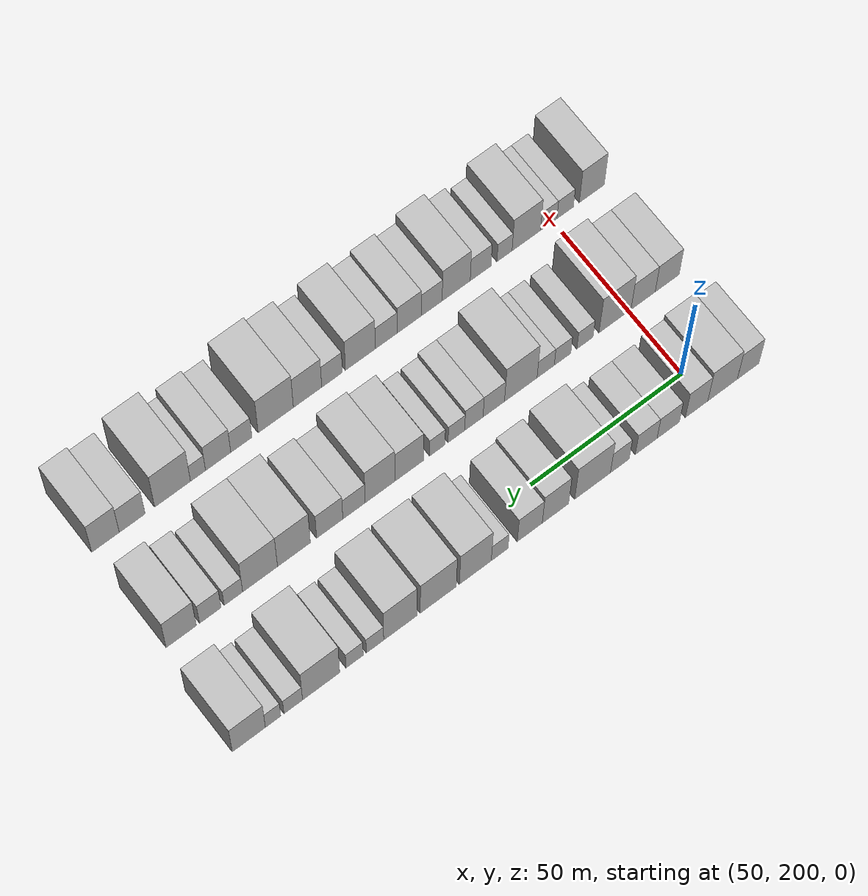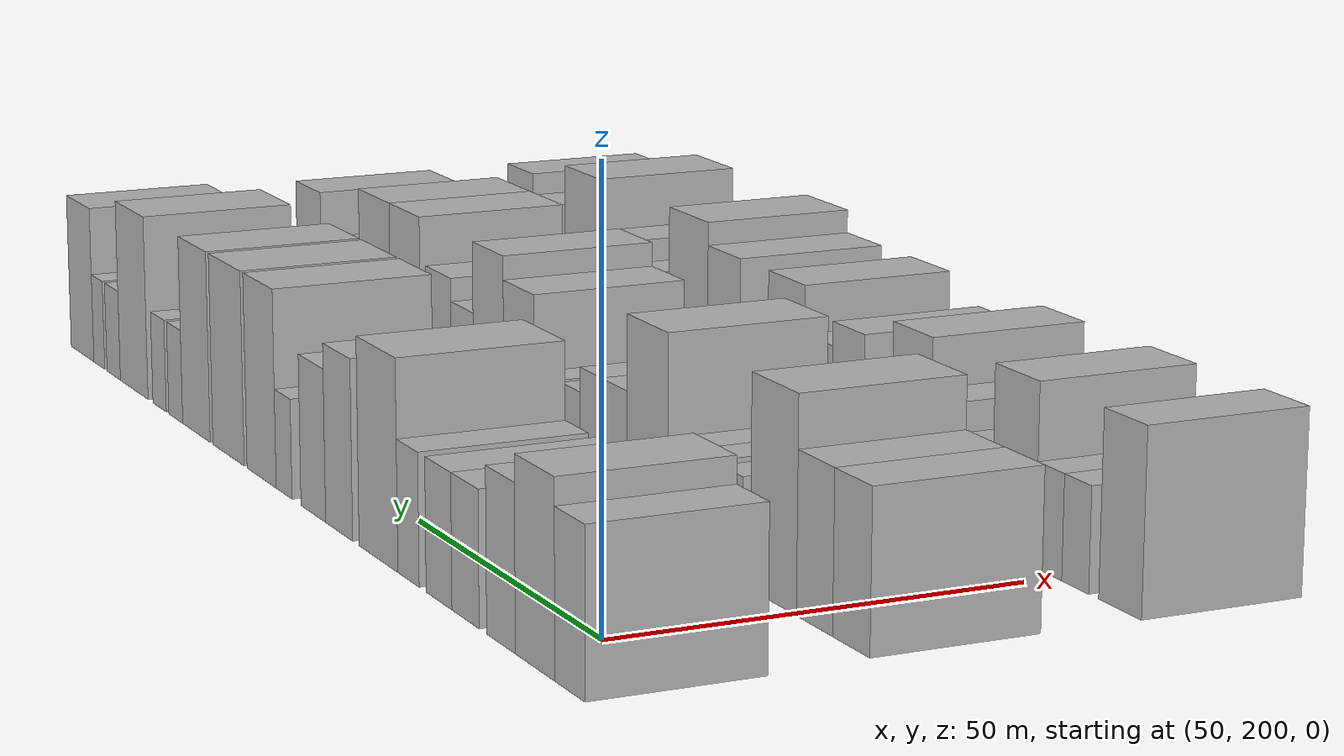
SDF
<sdf version="1.6">
 <world name="default">
  <model name="building_58">
   <static>1</static>
   <pose>50.0000 185.8272 0 0.000000 0.000000 0.000000</pose>
   <link name="link">
    <pose>0 0 9.00 0 0 0</pose>
    <collision name="collision"><geometry><box><size>20.0000 7.2564 18.0000</size></box></geometry></collision>
    <visual name="visual">
     <cast_shadows>0</cast_shadows>
     <geometry><box><size>20.0000 7.2564 18.0000</size></box></geometry>
     <material>
      <script>
       <uri>model://HANNAS_wall/materials/scripts</uri>
       <uri>model://HANNAS_wall/materials/textures</uri>
       <name>vrc/HANNAS_wall</name>
      </script>
     </material>
    </visual>
   </link>
  </model>
  <model name="building_59">
   <static>1</static>
   <pose>50.0000 194.3956 0 0.000000 0.000000 0.000000</pose>
   <link name="link">
    <pose>0 0 10.50 0 0 0</pose>
    <collision name="collision"><geometry><box><size>20.0000 9.8803 21.0000</size></box></geometry></collision>
    <visual name="visual">
     <cast_shadows>0</cast_shadows>
     <geometry><box><size>20.0000 9.8803 21.0000</size></box></geometry>
     <material>
      <script>
       <uri>model://HANNAS_wall/materials/scripts</uri>
       <uri>model://HANNAS_wall/materials/textures</uri>
       <name>vrc/HANNAS_wall</name>
      </script>
     </material>
    </visual>
   </link>
  </model>
  <model name="building_60">
   <static>1</static>
   <pose>50.0000 203.0829 0 0.000000 0.000000 0.000000</pose>
   <link name="link">
    <pose>0 0 9.00 0 0 0</pose>
    <collision name="collision"><geometry><box><size>20.0000 7.4944 18.0000</size></box></geometry></collision>
    <visual name="visual">
     <cast_shadows>0</cast_shadows>
     <geometry><box><size>20.0000 7.4944 18.0000</size></box></geometry>
     <material>
      <script>
       <uri>model://HANNAS_wall/materials/scripts</uri>
       <uri>model://HANNAS_wall/materials/textures</uri>
       <name>vrc/HANNAS_wall</name>
      </script>
     </material>
    </visual>
   </link>
  </model>
  <model name="building_61">
   <static>1</static>
   <pose>50.0000 212.5279 0 0.000000 0.000000 0.000000</pose>
   <link name="link">
    <pose>0 0 7.50 0 0 0</pose>
    <collision name="collision"><geometry><box><size>20.0000 7.3956 15.0000</size></box></geometry></collision>
    <visual name="visual">
     <cast_shadows>0</cast_shadows>
     <geometry><box><size>20.0000 7.3956 15.0000</size></box></geometry>
     <material>
      <script>
       <uri>model://HANNAS_wall/materials/scripts</uri>
       <uri>model://HANNAS_wall/materials/textures</uri>
       <name>vrc/HANNAS_wall</name>
      </script>
     </material>
    </visual>
   </link>
  </model>
  <model name="building_62">
   <static>1</static>
   <pose>50.0000 219.8428 0 0.000000 0.000000 0.000000</pose>
   <link name="link">
    <pose>0 0 7.50 0 0 0</pose>
    <collision name="collision"><geometry><box><size>20.0000 7.2342 15.0000</size></box></geometry></collision>
    <visual name="visual">
     <cast_shadows>0</cast_shadows>
     <geometry><box><size>20.0000 7.2342 15.0000</size></box></geometry>
     <material>
      <script>
       <uri>model://HANNAS_wall/materials/scripts</uri>
       <uri>model://HANNAS_wall/materials/textures</uri>
       <name>vrc/HANNAS_wall</name>
      </script>
     </material>
    </visual>
   </link>
  </model>
  <model name="building_63">
   <static>1</static>
   <pose>50.0000 228.5660 0 0.000000 0.000000 0.000000</pose>
   <link name="link">
    <pose>0 0 7.50 0 0 0</pose>
    <collision name="collision"><geometry><box><size>20.0000 6.2123 15.0000</size></box></geometry></collision>
    <visual name="visual">
     <cast_shadows>0</cast_shadows>
     <geometry><box><size>20.0000 6.2123 15.0000</size></box></geometry>
     <material>
      <script>
       <uri>model://HANNAS_wall/materials/scripts</uri>
       <uri>model://HANNAS_wall/materials/textures</uri>
       <name>vrc/HANNAS_wall</name>
      </script>
     </material>
    </visual>
   </link>
  </model>
  <model name="building_64">
   <static>1</static>
   <pose>50.0000 237.5419 0 0.000000 0.000000 0.000000</pose>
   <link name="link">
    <pose>0 0 12.00 0 0 0</pose>
    <collision name="collision"><geometry><box><size>20.0000 11.7394 24.0000</size></box></geometry></collision>
    <visual name="visual">
     <cast_shadows>0</cast_shadows>
     <geometry><box><size>20.0000 11.7394 24.0000</size></box></geometry>
     <material>
      <script>
       <uri>model://HANNAS_wall/materials/scripts</uri>
       <uri>model://HANNAS_wall/materials/textures</uri>
       <name>vrc/HANNAS_wall</name>
      </script>
     </material>
    </visual>
   </link>
  </model>
  <model name="building_65">
   <static>1</static>
   <pose>50.0000 249.7187 0 0.000000 0.000000 0.000000</pose>
   <link name="link">
    <pose>0 0 10.50 0 0 0</pose>
    <collision name="collision"><geometry><box><size>20.0000 8.6143 21.0000</size></box></geometry></collision>
    <visual name="visual">
     <cast_shadows>0</cast_shadows>
     <geometry><box><size>20.0000 8.6143 21.0000</size></box></geometry>
     <material>
      <script>
       <uri>model://HANNAS_wall/materials/scripts</uri>
       <uri>model://HANNAS_wall/materials/textures</uri>
       <name>vrc/HANNAS_wall</name>
      </script>
     </material>
    </visual>
   </link>
  </model>
  <model name="building_66">
   <static>1</static>
   <pose>50.0000 258.0908 0 0.000000 0.000000 0.000000</pose>
   <link name="link">
    <pose>0 0 9.00 0 0 0</pose>
    <collision name="collision"><geometry><box><size>20.0000 8.1298 18.0000</size></box></geometry></collision>
    <visual name="visual">
     <cast_shadows>0</cast_shadows>
     <geometry><box><size>20.0000 8.1298 18.0000</size></box></geometry>
     <material>
      <script>
       <uri>model://HANNAS_wall/materials/scripts</uri>
       <uri>model://HANNAS_wall/materials/textures</uri>
       <name>vrc/HANNAS_wall</name>
      </script>
     </material>
    </visual>
   </link>
  </model>
  <model name="building_67">
   <static>1</static>
   <pose>50.0000 267.8796 0 0.000000 0.000000 0.000000</pose>
   <link name="link">
    <pose>0 0 6.00 0 0 0</pose>
    <collision name="collision"><geometry><box><size>20.0000 5.4477 12.0000</size></box></geometry></collision>
    <visual name="visual">
     <cast_shadows>0</cast_shadows>
     <geometry><box><size>20.0000 5.4477 12.0000</size></box></geometry>
     <material>
      <script>
       <uri>model://HANNAS_wall/materials/scripts</uri>
       <uri>model://HANNAS_wall/materials/textures</uri>
       <name>vrc/HANNAS_wall</name>
      </script>
     </material>
    </visual>
   </link>
  </model>
  <model name="building_68">
   <static>1</static>
   <pose>50.0000 275.7543 0 0.000000 0.000000 0.000000</pose>
   <link name="link">
    <pose>0 0 12.00 0 0 0</pose>
    <collision name="collision"><geometry><box><size>20.0000 10.3018 24.0000</size></box></geometry></collision>
    <visual name="visual">
     <cast_shadows>0</cast_shadows>
     <geometry><box><size>20.0000 10.3018 24.0000</size></box></geometry>
     <material>
      <script>
       <uri>model://HANNAS_wall/materials/scripts</uri>
       <uri>model://HANNAS_wall/materials/textures</uri>
       <name>vrc/HANNAS_wall</name>
      </script>
     </material>
    </visual>
   </link>
  </model>
  <model name="building_69">
   <static>1</static>
   <pose>50.0000 287.7118 0 0.000000 0.000000 0.000000</pose>
   <link name="link">
    <pose>0 0 12.00 0 0 0</pose>
    <collision name="collision"><geometry><box><size>20.0000 11.6133 24.0000</size></box></geometry></collision>
    <visual name="visual">
     <cast_shadows>0</cast_shadows>
     <geometry><box><size>20.0000 11.6133 24.0000</size></box></geometry>
     <material>
      <script>
       <uri>model://HANNAS_wall/materials/scripts</uri>
       <uri>model://HANNAS_wall/materials/textures</uri>
       <name>vrc/HANNAS_wall</name>
      </script>
     </material>
    </visual>
   </link>
  </model>
  <model name="building_70">
   <static>1</static>
   <pose>50.0000 299.8496 0 0.000000 0.000000 0.000000</pose>
   <link name="link">
    <pose>0 0 12.00 0 0 0</pose>
    <collision name="collision"><geometry><box><size>20.0000 10.6623 24.0000</size></box></geometry></collision>
    <visual name="visual">
     <cast_shadows>0</cast_shadows>
     <geometry><box><size>20.0000 10.6623 24.0000</size></box></geometry>
     <material>
      <script>
       <uri>model://HANNAS_wall/materials/scripts</uri>
       <uri>model://HANNAS_wall/materials/textures</uri>
       <name>vrc/HANNAS_wall</name>
      </script>
     </material>
    </visual>
   </link>
  </model>
  <model name="building_71">
   <static>1</static>
   <pose>50.0000 307.9464 0 0.000000 0.000000 0.000000</pose>
   <link name="link">
    <pose>0 0 6.00 0 0 0</pose>
    <collision name="collision"><geometry><box><size>20.0000 5.5313 12.0000</size></box></geometry></collision>
    <visual name="visual">
     <cast_shadows>0</cast_shadows>
     <geometry><box><size>20.0000 5.5313 12.0000</size></box></geometry>
     <material>
      <script>
       <uri>model://HANNAS_wall/materials/scripts</uri>
       <uri>model://HANNAS_wall/materials/textures</uri>
       <name>vrc/HANNAS_wall</name>
      </script>
     </material>
    </visual>
   </link>
  </model>
  <model name="building_72">
   <static>1</static>
   <pose>50.0000 314.4449 0 0.000000 0.000000 0.000000</pose>
   <link name="link">
    <pose>0 0 6.00 0 0 0</pose>
    <collision name="collision"><geometry><box><size>20.0000 5.4656 12.0000</size></box></geometry></collision>
    <visual name="visual">
     <cast_shadows>0</cast_shadows>
     <geometry><box><size>20.0000 5.4656 12.0000</size></box></geometry>
     <material>
      <script>
       <uri>model://HANNAS_wall/materials/scripts</uri>
       <uri>model://HANNAS_wall/materials/textures</uri>
       <name>vrc/HANNAS_wall</name>
      </script>
     </material>
    </visual>
   </link>
  </model>
  <model name="building_73">
   <static>1</static>
   <pose>50.0000 325.0570 0 0.000000 0.000000 0.000000</pose>
   <link name="link">
    <pose>0 0 12.00 0 0 0</pose>
    <collision name="collision"><geometry><box><size>20.0000 11.7587 24.0000</size></box></geometry></collision>
    <visual name="visual">
     <cast_shadows>0</cast_shadows>
     <geometry><box><size>20.0000 11.7587 24.0000</size></box></geometry>
     <material>
      <script>
       <uri>model://HANNAS_wall/materials/scripts</uri>
       <uri>model://HANNAS_wall/materials/textures</uri>
       <name>vrc/HANNAS_wall</name>
      </script>
     </material>
    </visual>
   </link>
  </model>
  <model name="building_74">
   <static>1</static>
   <pose>50.0000 333.8588 0 0.000000 0.000000 0.000000</pose>
   <link name="link">
    <pose>0 0 6.00 0 0 0</pose>
    <collision name="collision"><geometry><box><size>20.0000 5.8449 12.0000</size></box></geometry></collision>
    <visual name="visual">
     <cast_shadows>0</cast_shadows>
     <geometry><box><size>20.0000 5.8449 12.0000</size></box></geometry>
     <material>
      <script>
       <uri>model://HANNAS_wall/materials/scripts</uri>
       <uri>model://HANNAS_wall/materials/textures</uri>
       <name>vrc/HANNAS_wall</name>
      </script>
     </material>
    </visual>
   </link>
  </model>
  <model name="building_75">
   <static>1</static>
   <pose>50.0000 340.1945 0 0.000000 0.000000 0.000000</pose>
   <link name="link">
    <pose>0 0 6.00 0 0 0</pose>
    <collision name="collision"><geometry><box><size>20.0000 4.8264 12.0000</size></box></geometry></collision>
    <visual name="visual">
     <cast_shadows>0</cast_shadows>
     <geometry><box><size>20.0000 4.8264 12.0000</size></box></geometry>
     <material>
      <script>
       <uri>model://HANNAS_wall/materials/scripts</uri>
       <uri>model://HANNAS_wall/materials/textures</uri>
       <name>vrc/HANNAS_wall</name>
      </script>
     </material>
    </visual>
   </link>
  </model>
  <model name="building_76">
   <static>1</static>
   <pose>50.0000 347.7923 0 0.000000 0.000000 0.000000</pose>
   <link name="link">
    <pose>0 0 10.50 0 0 0</pose>
    <collision name="collision"><geometry><box><size>20.0000 10.3693 21.0000</size></box></geometry></collision>
    <visual name="visual">
     <cast_shadows>0</cast_shadows>
     <geometry><box><size>20.0000 10.3693 21.0000</size></box></geometry>
     <material>
      <script>
       <uri>model://HANNAS_wall/materials/scripts</uri>
       <uri>model://HANNAS_wall/materials/textures</uri>
       <name>vrc/HANNAS_wall</name>
      </script>
     </material>
    </visual>
   </link>
  </model>
  <model name="building_137">
   <static>1</static>
   <pose>82.0000 187.1151 0 0.000000 0.000000 0.000000</pose>
   <link name="link">
    <pose>0 0 9.00 0 0 0</pose>
    <collision name="collision"><geometry><box><size>20.0000 8.0502 18.0000</size></box></geometry></collision>
    <visual name="visual">
     <cast_shadows>0</cast_shadows>
     <geometry><box><size>20.0000 8.0502 18.0000</size></box></geometry>
     <material>
      <script>
       <uri>model://HANNAS_wall/materials/scripts</uri>
       <uri>model://HANNAS_wall/materials/textures</uri>
       <name>vrc/HANNAS_wall</name>
      </script>
     </material>
    </visual>
   </link>
  </model>
  <model name="building_138">
   <static>1</static>
   <pose>82.0000 195.1911 0 0.000000 0.000000 0.000000</pose>
   <link name="link">
    <pose>0 0 9.00 0 0 0</pose>
    <collision name="collision"><geometry><box><size>20.0000 8.1020 18.0000</size></box></geometry></collision>
    <visual name="visual">
     <cast_shadows>0</cast_shadows>
     <geometry><box><size>20.0000 8.1020 18.0000</size></box></geometry>
     <material>
      <script>
       <uri>model://HANNAS_wall/materials/scripts</uri>
       <uri>model://HANNAS_wall/materials/textures</uri>
       <name>vrc/HANNAS_wall</name>
      </script>
     </material>
    </visual>
   </link>
  </model>
  <model name="building_139">
   <static>1</static>
   <pose>82.0000 204.6104 0 0.000000 0.000000 0.000000</pose>
   <link name="link">
    <pose>0 0 12.00 0 0 0</pose>
    <collision name="collision"><geometry><box><size>20.0000 10.7366 24.0000</size></box></geometry></collision>
    <visual name="visual">
     <cast_shadows>0</cast_shadows>
     <geometry><box><size>20.0000 10.7366 24.0000</size></box></geometry>
     <material>
      <script>
       <uri>model://HANNAS_wall/materials/scripts</uri>
       <uri>model://HANNAS_wall/materials/textures</uri>
       <name>vrc/HANNAS_wall</name>
      </script>
     </material>
    </visual>
   </link>
  </model>
  <model name="building_140">
   <static>1</static>
   <pose>82.0000 214.6789 0 0.000000 0.000000 0.000000</pose>
   <link name="link">
    <pose>0 0 6.00 0 0 0</pose>
    <collision name="collision"><geometry><box><size>20.0000 5.4003 12.0000</size></box></geometry></collision>
    <visual name="visual">
     <cast_shadows>0</cast_shadows>
     <geometry><box><size>20.0000 5.4003 12.0000</size></box></geometry>
     <material>
      <script>
       <uri>model://HANNAS_wall/materials/scripts</uri>
       <uri>model://HANNAS_wall/materials/textures</uri>
       <name>vrc/HANNAS_wall</name>
      </script>
     </material>
    </visual>
   </link>
  </model>
  <model name="building_141">
   <static>1</static>
   <pose>82.0000 222.1267 0 0.000000 0.000000 0.000000</pose>
   <link name="link">
    <pose>0 0 6.00 0 0 0</pose>
    <collision name="collision"><geometry><box><size>20.0000 5.4953 12.0000</size></box></geometry></collision>
    <visual name="visual">
     <cast_shadows>0</cast_shadows>
     <geometry><box><size>20.0000 5.4953 12.0000</size></box></geometry>
     <material>
      <script>
       <uri>model://HANNAS_wall/materials/scripts</uri>
       <uri>model://HANNAS_wall/materials/textures</uri>
       <name>vrc/HANNAS_wall</name>
      </script>
     </material>
    </visual>
   </link>
  </model>
  <model name="building_142">
   <static>1</static>
   <pose>82.0000 227.7180 0 0.000000 0.000000 0.000000</pose>
   <link name="link">
    <pose>0 0 6.00 0 0 0</pose>
    <collision name="collision"><geometry><box><size>20.0000 5.6875 12.0000</size></box></geometry></collision>
    <visual name="visual">
     <cast_shadows>0</cast_shadows>
     <geometry><box><size>20.0000 5.6875 12.0000</size></box></geometry>
     <material>
      <script>
       <uri>model://HANNAS_wall/materials/scripts</uri>
       <uri>model://HANNAS_wall/materials/textures</uri>
       <name>vrc/HANNAS_wall</name>
      </script>
     </material>
    </visual>
   </link>
  </model>
  <model name="building_143">
   <static>1</static>
   <pose>82.0000 235.9369 0 0.000000 0.000000 0.000000</pose>
   <link name="link">
    <pose>0 0 12.00 0 0 0</pose>
    <collision name="collision"><geometry><box><size>20.0000 10.7502 24.0000</size></box></geometry></collision>
    <visual name="visual">
     <cast_shadows>0</cast_shadows>
     <geometry><box><size>20.0000 10.7502 24.0000</size></box></geometry>
     <material>
      <script>
       <uri>model://HANNAS_wall/materials/scripts</uri>
       <uri>model://HANNAS_wall/materials/textures</uri>
       <name>vrc/HANNAS_wall</name>
      </script>
     </material>
    </visual>
   </link>
  </model>
  <model name="building_144">
   <static>1</static>
   <pose>82.0000 244.8283 0 0.000000 0.000000 0.000000</pose>
   <link name="link">
    <pose>0 0 7.50 0 0 0</pose>
    <collision name="collision"><geometry><box><size>20.0000 7.0326 15.0000</size></box></geometry></collision>
    <visual name="visual">
     <cast_shadows>0</cast_shadows>
     <geometry><box><size>20.0000 7.0326 15.0000</size></box></geometry>
     <material>
      <script>
       <uri>model://HANNAS_wall/materials/scripts</uri>
       <uri>model://HANNAS_wall/materials/textures</uri>
       <name>vrc/HANNAS_wall</name>
      </script>
     </material>
    </visual>
   </link>
  </model>
  <model name="building_145">
   <static>1</static>
   <pose>82.0000 251.3699 0 0.000000 0.000000 0.000000</pose>
   <link name="link">
    <pose>0 0 7.50 0 0 0</pose>
    <collision name="collision"><geometry><box><size>20.0000 6.0506 15.0000</size></box></geometry></collision>
    <visual name="visual">
     <cast_shadows>0</cast_shadows>
     <geometry><box><size>20.0000 6.0506 15.0000</size></box></geometry>
     <material>
      <script>
       <uri>model://HANNAS_wall/materials/scripts</uri>
       <uri>model://HANNAS_wall/materials/textures</uri>
       <name>vrc/HANNAS_wall</name>
      </script>
     </material>
    </visual>
   </link>
  </model>
  <model name="building_146">
   <static>1</static>
   <pose>82.0000 257.1100 0 0.000000 0.000000 0.000000</pose>
   <link name="link">
    <pose>0 0 6.00 0 0 0</pose>
    <collision name="collision"><geometry><box><size>20.0000 5.4297 12.0000</size></box></geometry></collision>
    <visual name="visual">
     <cast_shadows>0</cast_shadows>
     <geometry><box><size>20.0000 5.4297 12.0000</size></box></geometry>
     <material>
      <script>
       <uri>model://HANNAS_wall/materials/scripts</uri>
       <uri>model://HANNAS_wall/materials/textures</uri>
       <name>vrc/HANNAS_wall</name>
      </script>
     </material>
    </visual>
   </link>
  </model>
  <model name="building_147">
   <static>1</static>
   <pose>82.0000 263.3292 0 0.000000 0.000000 0.000000</pose>
   <link name="link">
    <pose>0 0 6.00 0 0 0</pose>
    <collision name="collision"><geometry><box><size>20.0000 5.0087 12.0000</size></box></geometry></collision>
    <visual name="visual">
     <cast_shadows>0</cast_shadows>
     <geometry><box><size>20.0000 5.0087 12.0000</size></box></geometry>
     <material>
      <script>
       <uri>model://HANNAS_wall/materials/scripts</uri>
       <uri>model://HANNAS_wall/materials/textures</uri>
       <name>vrc/HANNAS_wall</name>
      </script>
     </material>
    </visual>
   </link>
  </model>
  <model name="building_148">
   <static>1</static>
   <pose>82.0000 272.4831 0 0.000000 0.000000 0.000000</pose>
   <link name="link">
    <pose>0 0 10.50 0 0 0</pose>
    <collision name="collision"><geometry><box><size>20.0000 9.2991 21.0000</size></box></geometry></collision>
    <visual name="visual">
     <cast_shadows>0</cast_shadows>
     <geometry><box><size>20.0000 9.2991 21.0000</size></box></geometry>
     <material>
      <script>
       <uri>model://HANNAS_wall/materials/scripts</uri>
       <uri>model://HANNAS_wall/materials/textures</uri>
       <name>vrc/HANNAS_wall</name>
      </script>
     </material>
    </visual>
   </link>
  </model>
  <model name="building_149">
   <static>1</static>
   <pose>82.0000 281.9372 0 0.000000 0.000000 0.000000</pose>
   <link name="link">
    <pose>0 0 12.00 0 0 0</pose>
    <collision name="collision"><geometry><box><size>20.0000 9.6090 24.0000</size></box></geometry></collision>
    <visual name="visual">
     <cast_shadows>0</cast_shadows>
     <geometry><box><size>20.0000 9.6090 24.0000</size></box></geometry>
     <material>
      <script>
       <uri>model://HANNAS_wall/materials/scripts</uri>
       <uri>model://HANNAS_wall/materials/textures</uri>
       <name>vrc/HANNAS_wall</name>
      </script>
     </material>
    </visual>
   </link>
  </model>
  <model name="building_150">
   <static>1</static>
   <pose>82.0000 290.3462 0 0.000000 0.000000 0.000000</pose>
   <link name="link">
    <pose>0 0 7.50 0 0 0</pose>
    <collision name="collision"><geometry><box><size>20.0000 7.2090 15.0000</size></box></geometry></collision>
    <visual name="visual">
     <cast_shadows>0</cast_shadows>
     <geometry><box><size>20.0000 7.2090 15.0000</size></box></geometry>
     <material>
      <script>
       <uri>model://HANNAS_wall/materials/scripts</uri>
       <uri>model://HANNAS_wall/materials/textures</uri>
       <name>vrc/HANNAS_wall</name>
      </script>
     </material>
    </visual>
   </link>
  </model>
  <model name="building_151">
   <static>1</static>
   <pose>82.0000 298.1655 0 0.000000 0.000000 0.000000</pose>
   <link name="link">
    <pose>0 0 9.00 0 0 0</pose>
    <collision name="collision"><geometry><box><size>20.0000 8.4296 18.0000</size></box></geometry></collision>
    <visual name="visual">
     <cast_shadows>0</cast_shadows>
     <geometry><box><size>20.0000 8.4296 18.0000</size></box></geometry>
     <material>
      <script>
       <uri>model://HANNAS_wall/materials/scripts</uri>
       <uri>model://HANNAS_wall/materials/textures</uri>
       <name>vrc/HANNAS_wall</name>
      </script>
     </material>
    </visual>
   </link>
  </model>
  <model name="building_152">
   <static>1</static>
   <pose>82.0000 309.6269 0 0.000000 0.000000 0.000000</pose>
   <link name="link">
    <pose>0 0 12.00 0 0 0</pose>
    <collision name="collision"><geometry><box><size>20.0000 10.4932 24.0000</size></box></geometry></collision>
    <visual name="visual">
     <cast_shadows>0</cast_shadows>
     <geometry><box><size>20.0000 10.4932 24.0000</size></box></geometry>
     <material>
      <script>
       <uri>model://HANNAS_wall/materials/scripts</uri>
       <uri>model://HANNAS_wall/materials/textures</uri>
       <name>vrc/HANNAS_wall</name>
      </script>
     </material>
    </visual>
   </link>
  </model>
  <model name="building_153">
   <static>1</static>
   <pose>82.0000 320.4143 0 0.000000 0.000000 0.000000</pose>
   <link name="link">
    <pose>0 0 12.00 0 0 0</pose>
    <collision name="collision"><geometry><box><size>20.0000 11.0817 24.0000</size></box></geometry></collision>
    <visual name="visual">
     <cast_shadows>0</cast_shadows>
     <geometry><box><size>20.0000 11.0817 24.0000</size></box></geometry>
     <material>
      <script>
       <uri>model://HANNAS_wall/materials/scripts</uri>
       <uri>model://HANNAS_wall/materials/textures</uri>
       <name>vrc/HANNAS_wall</name>
      </script>
     </material>
    </visual>
   </link>
  </model>
  <model name="building_154">
   <static>1</static>
   <pose>82.0000 328.8820 0 0.000000 0.000000 0.000000</pose>
   <link name="link">
    <pose>0 0 6.00 0 0 0</pose>
    <collision name="collision"><geometry><box><size>20.0000 5.8536 12.0000</size></box></geometry></collision>
    <visual name="visual">
     <cast_shadows>0</cast_shadows>
     <geometry><box><size>20.0000 5.8536 12.0000</size></box></geometry>
     <material>
      <script>
       <uri>model://HANNAS_wall/materials/scripts</uri>
       <uri>model://HANNAS_wall/materials/textures</uri>
       <name>vrc/HANNAS_wall</name>
      </script>
     </material>
    </visual>
   </link>
  </model>
  <model name="building_155">
   <static>1</static>
   <pose>82.0000 336.2053 0 0.000000 0.000000 0.000000</pose>
   <link name="link">
    <pose>0 0 7.50 0 0 0</pose>
    <collision name="collision"><geometry><box><size>20.0000 6.7929 15.0000</size></box></geometry></collision>
    <visual name="visual">
     <cast_shadows>0</cast_shadows>
     <geometry><box><size>20.0000 6.7929 15.0000</size></box></geometry>
     <material>
      <script>
       <uri>model://HANNAS_wall/materials/scripts</uri>
       <uri>model://HANNAS_wall/materials/textures</uri>
       <name>vrc/HANNAS_wall</name>
      </script>
     </material>
    </visual>
   </link>
  </model>
  <model name="building_156">
   <static>1</static>
   <pose>82.0000 345.3758 0 0.000000 0.000000 0.000000</pose>
   <link name="link">
    <pose>0 0 10.50 0 0 0</pose>
    <collision name="collision"><geometry><box><size>20.0000 9.5482 21.0000</size></box></geometry></collision>
    <visual name="visual">
     <cast_shadows>0</cast_shadows>
     <geometry><box><size>20.0000 9.5482 21.0000</size></box></geometry>
     <material>
      <script>
       <uri>model://HANNAS_wall/materials/scripts</uri>
       <uri>model://HANNAS_wall/materials/textures</uri>
       <name>vrc/HANNAS_wall</name>
      </script>
     </material>
    </visual>
   </link>
  </model>
  <model name="building_216">
   <static>1</static>
   <pose>114.0000 186.9782 0 0.000000 0.000000 0.000000</pose>
   <link name="link">
    <pose>0 0 10.50 0 0 0</pose>
    <collision name="collision"><geometry><box><size>20.0000 8.4401 21.0000</size></box></geometry></collision>
    <visual name="visual">
     <cast_shadows>0</cast_shadows>
     <geometry><box><size>20.0000 8.4401 21.0000</size></box></geometry>
     <material>
      <script>
       <uri>model://HANNAS_wall/materials/scripts</uri>
       <uri>model://HANNAS_wall/materials/textures</uri>
       <name>vrc/HANNAS_wall</name>
      </script>
     </material>
    </visual>
   </link>
  </model>
  <model name="building_217">
   <static>1</static>
   <pose>114.0000 195.9627 0 0.000000 0.000000 0.000000</pose>
   <link name="link">
    <pose>0 0 6.00 0 0 0</pose>
    <collision name="collision"><geometry><box><size>20.0000 5.5289 12.0000</size></box></geometry></collision>
    <visual name="visual">
     <cast_shadows>0</cast_shadows>
     <geometry><box><size>20.0000 5.5289 12.0000</size></box></geometry>
     <material>
      <script>
       <uri>model://HANNAS_wall/materials/scripts</uri>
       <uri>model://HANNAS_wall/materials/textures</uri>
       <name>vrc/HANNAS_wall</name>
      </script>
     </material>
    </visual>
   </link>
  </model>
  <model name="building_218">
   <static>1</static>
   <pose>114.0000 201.4922 0 0.000000 0.000000 0.000000</pose>
   <link name="link">
    <pose>0 0 6.00 0 0 0</pose>
    <collision name="collision"><geometry><box><size>20.0000 5.5300 12.0000</size></box></geometry></collision>
    <visual name="visual">
     <cast_shadows>0</cast_shadows>
     <geometry><box><size>20.0000 5.5300 12.0000</size></box></geometry>
     <material>
      <script>
       <uri>model://HANNAS_wall/materials/scripts</uri>
       <uri>model://HANNAS_wall/materials/textures</uri>
       <name>vrc/HANNAS_wall</name>
      </script>
     </material>
    </visual>
   </link>
  </model>
  <model name="building_219">
   <static>1</static>
   <pose>114.0000 209.0212 0 0.000000 0.000000 0.000000</pose>
   <link name="link">
    <pose>0 0 10.50 0 0 0</pose>
    <collision name="collision"><geometry><box><size>20.0000 9.5280 21.0000</size></box></geometry></collision>
    <visual name="visual">
     <cast_shadows>0</cast_shadows>
     <geometry><box><size>20.0000 9.5280 21.0000</size></box></geometry>
     <material>
      <script>
       <uri>model://HANNAS_wall/materials/scripts</uri>
       <uri>model://HANNAS_wall/materials/textures</uri>
       <name>vrc/HANNAS_wall</name>
      </script>
     </material>
    </visual>
   </link>
  </model>
  <model name="building_220">
   <static>1</static>
   <pose>114.0000 216.3083 0 0.000000 0.000000 0.000000</pose>
   <link name="link">
    <pose>0 0 6.00 0 0 0</pose>
    <collision name="collision"><geometry><box><size>20.0000 5.0462 12.0000</size></box></geometry></collision>
    <visual name="visual">
     <cast_shadows>0</cast_shadows>
     <geometry><box><size>20.0000 5.0462 12.0000</size></box></geometry>
     <material>
      <script>
       <uri>model://HANNAS_wall/materials/scripts</uri>
       <uri>model://HANNAS_wall/materials/textures</uri>
       <name>vrc/HANNAS_wall</name>
      </script>
     </material>
    </visual>
   </link>
  </model>
  <model name="building_221">
   <static>1</static>
   <pose>114.0000 224.2874 0 0.000000 0.000000 0.000000</pose>
   <link name="link">
    <pose>0 0 7.50 0 0 0</pose>
    <collision name="collision"><geometry><box><size>20.0000 6.9119 15.0000</size></box></geometry></collision>
    <visual name="visual">
     <cast_shadows>0</cast_shadows>
     <geometry><box><size>20.0000 6.9119 15.0000</size></box></geometry>
     <material>
      <script>
       <uri>model://HANNAS_wall/materials/scripts</uri>
       <uri>model://HANNAS_wall/materials/textures</uri>
       <name>vrc/HANNAS_wall</name>
      </script>
     </material>
    </visual>
   </link>
  </model>
  <model name="building_222">
   <static>1</static>
   <pose>114.0000 232.4093 0 0.000000 0.000000 0.000000</pose>
   <link name="link">
    <pose>0 0 10.50 0 0 0</pose>
    <collision name="collision"><geometry><box><size>20.0000 9.3319 21.0000</size></box></geometry></collision>
    <visual name="visual">
     <cast_shadows>0</cast_shadows>
     <geometry><box><size>20.0000 9.3319 21.0000</size></box></geometry>
     <material>
      <script>
       <uri>model://HANNAS_wall/materials/scripts</uri>
       <uri>model://HANNAS_wall/materials/textures</uri>
       <name>vrc/HANNAS_wall</name>
      </script>
     </material>
    </visual>
   </link>
  </model>
  <model name="building_223">
   <static>1</static>
   <pose>114.0000 240.5133 0 0.000000 0.000000 0.000000</pose>
   <link name="link">
    <pose>0 0 7.50 0 0 0</pose>
    <collision name="collision"><geometry><box><size>20.0000 6.8762 15.0000</size></box></geometry></collision>
    <visual name="visual">
     <cast_shadows>0</cast_shadows>
     <geometry><box><size>20.0000 6.8762 15.0000</size></box></geometry>
     <material>
      <script>
       <uri>model://HANNAS_wall/materials/scripts</uri>
       <uri>model://HANNAS_wall/materials/textures</uri>
       <name>vrc/HANNAS_wall</name>
      </script>
     </material>
    </visual>
   </link>
  </model>
  <model name="building_224">
   <static>1</static>
   <pose>114.0000 247.9198 0 0.000000 0.000000 0.000000</pose>
   <link name="link">
    <pose>0 0 9.00 0 0 0</pose>
    <collision name="collision"><geometry><box><size>20.0000 7.9367 18.0000</size></box></geometry></collision>
    <visual name="visual">
     <cast_shadows>0</cast_shadows>
     <geometry><box><size>20.0000 7.9367 18.0000</size></box></geometry>
     <material>
      <script>
       <uri>model://HANNAS_wall/materials/scripts</uri>
       <uri>model://HANNAS_wall/materials/textures</uri>
       <name>vrc/HANNAS_wall</name>
      </script>
     </material>
    </visual>
   </link>
  </model>
  <model name="building_225">
   <static>1</static>
   <pose>114.0000 255.4941 0 0.000000 0.000000 0.000000</pose>
   <link name="link">
    <pose>0 0 7.50 0 0 0</pose>
    <collision name="collision"><geometry><box><size>20.0000 7.2120 15.0000</size></box></geometry></collision>
    <visual name="visual">
     <cast_shadows>0</cast_shadows>
     <geometry><box><size>20.0000 7.2120 15.0000</size></box></geometry>
     <material>
      <script>
       <uri>model://HANNAS_wall/materials/scripts</uri>
       <uri>model://HANNAS_wall/materials/textures</uri>
       <name>vrc/HANNAS_wall</name>
      </script>
     </material>
    </visual>
   </link>
  </model>
  <model name="building_226">
   <static>1</static>
   <pose>114.0000 263.9833 0 0.000000 0.000000 0.000000</pose>
   <link name="link">
    <pose>0 0 10.50 0 0 0</pose>
    <collision name="collision"><geometry><box><size>20.0000 9.7663 21.0000</size></box></geometry></collision>
    <visual name="visual">
     <cast_shadows>0</cast_shadows>
     <geometry><box><size>20.0000 9.7663 21.0000</size></box></geometry>
     <material>
      <script>
       <uri>model://HANNAS_wall/materials/scripts</uri>
       <uri>model://HANNAS_wall/materials/textures</uri>
       <name>vrc/HANNAS_wall</name>
      </script>
     </material>
    </visual>
   </link>
  </model>
  <model name="building_227">
   <static>1</static>
   <pose>114.0000 273.2324 0 0.000000 0.000000 0.000000</pose>
   <link name="link">
    <pose>0 0 7.50 0 0 0</pose>
    <collision name="collision"><geometry><box><size>20.0000 6.7320 15.0000</size></box></geometry></collision>
    <visual name="visual">
     <cast_shadows>0</cast_shadows>
     <geometry><box><size>20.0000 6.7320 15.0000</size></box></geometry>
     <material>
      <script>
       <uri>model://HANNAS_wall/materials/scripts</uri>
       <uri>model://HANNAS_wall/materials/textures</uri>
       <name>vrc/HANNAS_wall</name>
      </script>
     </material>
    </visual>
   </link>
  </model>
  <model name="building_228">
   <static>1</static>
   <pose>114.0000 281.2004 0 0.000000 0.000000 0.000000</pose>
   <link name="link">
    <pose>0 0 10.50 0 0 0</pose>
    <collision name="collision"><geometry><box><size>20.0000 9.2039 21.0000</size></box></geometry></collision>
    <visual name="visual">
     <cast_shadows>0</cast_shadows>
     <geometry><box><size>20.0000 9.2039 21.0000</size></box></geometry>
     <material>
      <script>
       <uri>model://HANNAS_wall/materials/scripts</uri>
       <uri>model://HANNAS_wall/materials/textures</uri>
       <name>vrc/HANNAS_wall</name>
      </script>
     </material>
    </visual>
   </link>
  </model>
  <model name="building_229">
   <static>1</static>
   <pose>114.0000 291.5006 0 0.000000 0.000000 0.000000</pose>
   <link name="link">
    <pose>0 0 12.00 0 0 0</pose>
    <collision name="collision"><geometry><box><size>20.0000 11.3964 24.0000</size></box></geometry></collision>
    <visual name="visual">
     <cast_shadows>0</cast_shadows>
     <geometry><box><size>20.0000 11.3964 24.0000</size></box></geometry>
     <material>
      <script>
       <uri>model://HANNAS_wall/materials/scripts</uri>
       <uri>model://HANNAS_wall/materials/textures</uri>
       <name>vrc/HANNAS_wall</name>
      </script>
     </material>
    </visual>
   </link>
  </model>
  <model name="building_230">
   <static>1</static>
   <pose>114.0000 302.5957 0 0.000000 0.000000 0.000000</pose>
   <link name="link">
    <pose>0 0 7.50 0 0 0</pose>
    <collision name="collision"><geometry><box><size>20.0000 6.7938 15.0000</size></box></geometry></collision>
    <visual name="visual">
     <cast_shadows>0</cast_shadows>
     <geometry><box><size>20.0000 6.7938 15.0000</size></box></geometry>
     <material>
      <script>
       <uri>model://HANNAS_wall/materials/scripts</uri>
       <uri>model://HANNAS_wall/materials/textures</uri>
       <name>vrc/HANNAS_wall</name>
      </script>
     </material>
    </visual>
   </link>
  </model>
  <model name="building_231">
   <static>1</static>
   <pose>114.0000 310.0498 0 0.000000 0.000000 0.000000</pose>
   <link name="link">
    <pose>0 0 9.00 0 0 0</pose>
    <collision name="collision"><geometry><box><size>20.0000 8.1143 18.0000</size></box></geometry></collision>
    <visual name="visual">
     <cast_shadows>0</cast_shadows>
     <geometry><box><size>20.0000 8.1143 18.0000</size></box></geometry>
     <material>
      <script>
       <uri>model://HANNAS_wall/materials/scripts</uri>
       <uri>model://HANNAS_wall/materials/textures</uri>
       <name>vrc/HANNAS_wall</name>
      </script>
     </material>
    </visual>
   </link>
  </model>
  <model name="building_232">
   <static>1</static>
   <pose>114.0000 316.5169 0 0.000000 0.000000 0.000000</pose>
   <link name="link">
    <pose>0 0 6.00 0 0 0</pose>
    <collision name="collision"><geometry><box><size>20.0000 4.8200 12.0000</size></box></geometry></collision>
    <visual name="visual">
     <cast_shadows>0</cast_shadows>
     <geometry><box><size>20.0000 4.8200 12.0000</size></box></geometry>
     <material>
      <script>
       <uri>model://HANNAS_wall/materials/scripts</uri>
       <uri>model://HANNAS_wall/materials/textures</uri>
       <name>vrc/HANNAS_wall</name>
      </script>
     </material>
    </visual>
   </link>
  </model>
  <model name="building_233">
   <static>1</static>
   <pose>114.0000 324.6532 0 0.000000 0.000000 0.000000</pose>
   <link name="link">
    <pose>0 0 12.00 0 0 0</pose>
    <collision name="collision"><geometry><box><size>20.0000 11.4526 24.0000</size></box></geometry></collision>
    <visual name="visual">
     <cast_shadows>0</cast_shadows>
     <geometry><box><size>20.0000 11.4526 24.0000</size></box></geometry>
     <material>
      <script>
       <uri>model://HANNAS_wall/materials/scripts</uri>
       <uri>model://HANNAS_wall/materials/textures</uri>
       <name>vrc/HANNAS_wall</name>
      </script>
     </material>
    </visual>
   </link>
  </model>
  <model name="building_234">
   <static>1</static>
   <pose>114.0000 337.4772 0 0.000000 0.000000 0.000000</pose>
   <link name="link">
    <pose>0 0 9.00 0 0 0</pose>
    <collision name="collision"><geometry><box><size>20.0000 8.1954 18.0000</size></box></geometry></collision>
    <visual name="visual">
     <cast_shadows>0</cast_shadows>
     <geometry><box><size>20.0000 8.1954 18.0000</size></box></geometry>
     <material>
      <script>
       <uri>model://HANNAS_wall/materials/scripts</uri>
       <uri>model://HANNAS_wall/materials/textures</uri>
       <name>vrc/HANNAS_wall</name>
      </script>
     </material>
    </visual>
   </link>
  </model>
  <model name="building_235">
   <static>1</static>
   <pose>114.0000 345.9372 0 0.000000 0.000000 0.000000</pose>
   <link name="link">
    <pose>0 0 10.50 0 0 0</pose>
    <collision name="collision"><geometry><box><size>20.0000 8.7246 21.0000</size></box></geometry></collision>
    <visual name="visual">
     <cast_shadows>0</cast_shadows>
     <geometry><box><size>20.0000 8.7246 21.0000</size></box></geometry>
     <material>
      <script>
       <uri>model://HANNAS_wall/materials/scripts</uri>
       <uri>model://HANNAS_wall/materials/textures</uri>
       <name>vrc/HANNAS_wall</name>
      </script>
     </material>
    </visual>
   </link>
  </model>
 </world>
</sdf>
